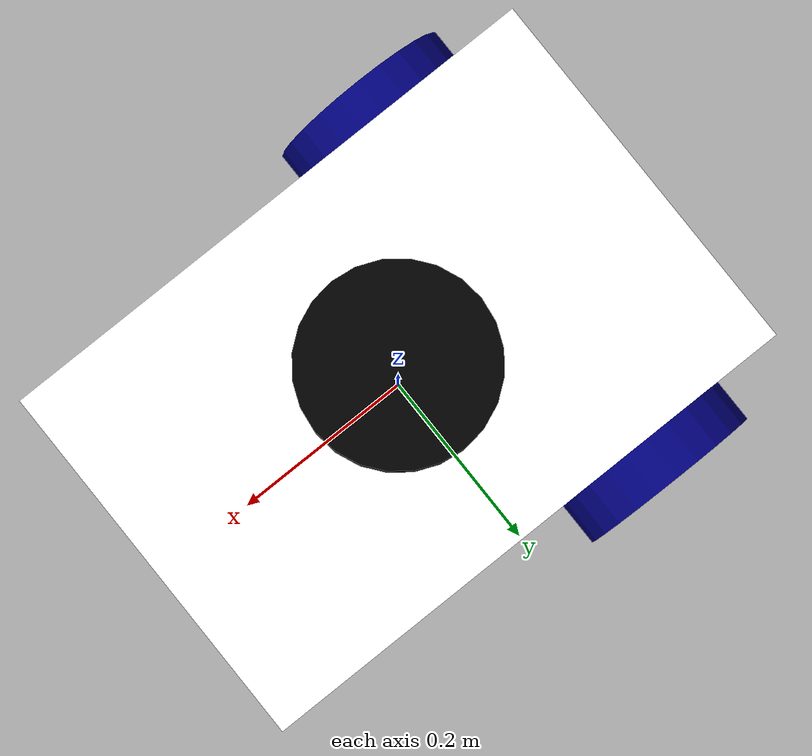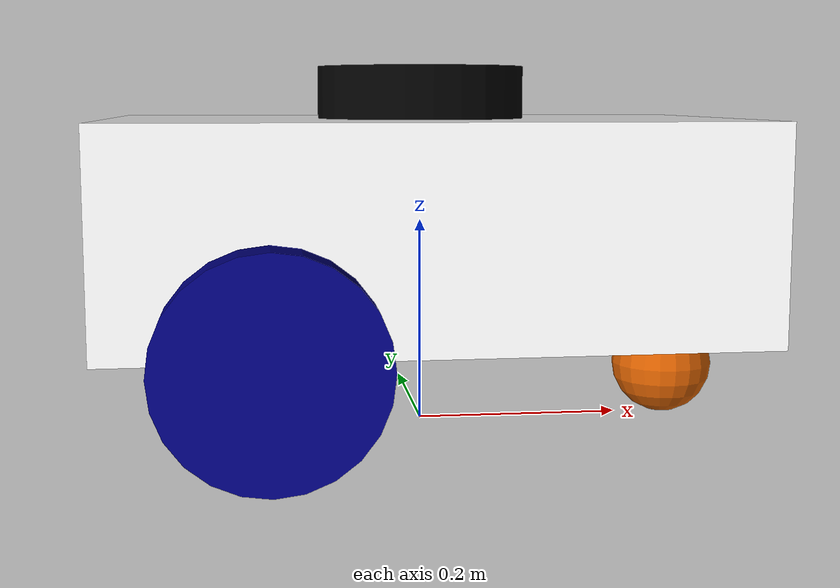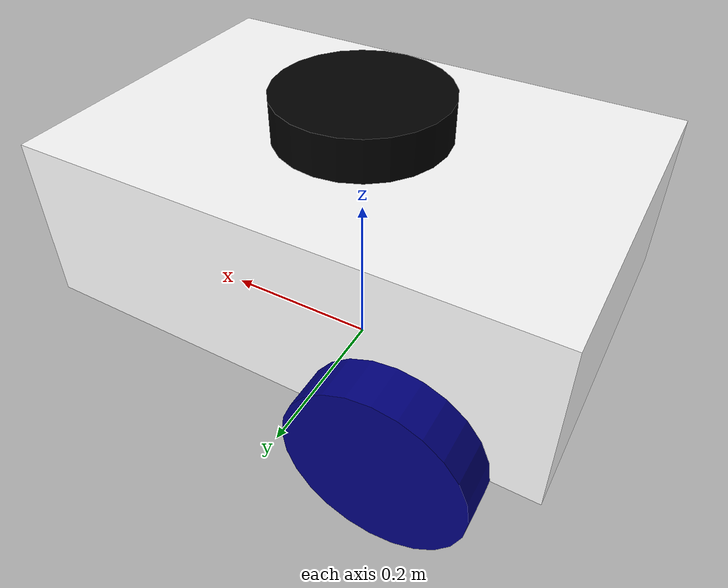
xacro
<?xml version="1.0"?>
<robot xmlns:xacro="http://www.ros.org/wiki/xacro">
    xacro:<xacro:include filename="inertial_macros.xacro" />
  <!-- Define material only once -->
    <material name="white">
        <color rgba="1 1 1 1"/>
    </material>
    <material name="black">
        <color rgba="0 0 0 1"/>
    </material>
    <material name="blue">
        <color rgba="0 0 0.5 1" />
    </material>
    <!--start link llllllllllllllllllllllllllllllllllllllllllllllllllll -->
    <link name="base_footprint" />
    <link name="base_link">
        <visual>
            <geometry>
                <box size="0.6 0.4 0.2"/>
            </geometry>
            <origin xyz="0 0 0.1" rpy="0 0 0"/>
            <!-- Apply material -->
            <material name="white"/>
        </visual>
        <collision>
            <geometry>
                <box size="0.6 0.4 0.2"/>
            </geometry>
            <origin xyz="0 0 0.1" rpy="0 0 0"/>
            <!-- Apply material -->
            <material name="white"/>
        </collision>
    </link>
    <link name="lidar">
        <visual>
            <geometry>
                <cylinder radius="0.1" length="0.05"/>
            </geometry>
            <origin xyz="0 0 0" rpy="0 0 0" />
            <material name="black"/>
        </visual>
        <collision>
            <geometry>
                <cylinder radius="0.1" length="0.05"/>
            </geometry>
            <origin xyz="0 0 0" rpy="0 0 0" />
            <material name="black"/>
        </collision>
    </link>
    <link name="whil_wright">
        <visual>
            <geometry>
                <cylinder radius="0.1" length="0.05"/>
            </geometry>
            <origin xyz="0 0 0" rpy="1.57 0 0 "/>
            <material name="blue"/>
        </visual>
        <collision>
            <geometry>
                <cylinder radius="0.1" length="0.05"/>
            </geometry>
            <origin xyz="0 0 0" rpy="1.57 0 0 "/>
            <material name="blue"/>
        </collision>
    </link>
    <link name="whil_left">
        <visual>
            <geometry>
                <cylinder radius="0.1" length="0.05"/>
            </geometry>
            <origin xyz="0 0 0" rpy="1.57 0 0 "/>
            <material name="blue"/>
        </visual>
        <collision>
            <geometry>
                <cylinder radius="0.1" length="0.05"/>
            </geometry>
            <origin xyz="0 0 0" rpy="1.57 0 0 "/>
            <material name="blue"/>
        </collision>
    </link>

    <link name="first_while">
        <visual>
            <geometry>
                    <sphere radius="0.05"/>
            </geometry>
            <origin xyz="0 0 0"/>
        </visual>
        <collision>
            <geometry>
                    <sphere radius="0.05"/>
            </geometry>
            <origin xyz="0 0 0"/>
        </collision>
    </link>
<!--lllllllllllllllllllllllllllllllllllllllllllllllllllllllllllllllllllllllink eded lllllllllllllllllllllllllllllllllll-->
    <joint name="base_lidar_joint" type="fixed">
        <parent link="base_link"/>
        <child link="lidar"/>
        <origin xyz="0 0 0.225" rpy="0 0 0"/>
    </joint>
    <joint name="base_whil_wright_joint" type="continuous">
        <parent link="base_link"/>
        <child link="whil_wright"/>
        <origin xyz="-0.15 -0.225 0 " rpy="0 0 0"/>
        <axis xyz="0 1 0"/>
    </joint>
    <joint name="base_whil_left_joint" type="continuous">
        <parent link="base_link"/>
        <child link="whil_left"/>
        <origin xyz="-0.15 0.225 0 " rpy="0 0 0"/>
        <axis xyz="0 1 0"/>
    </joint>
    <joint name="base_first_while_joint" type="fixed">
        <parent link="base_link"/>
        <child link="first_while"/>
        <origin xyz="0.25 0 -0.05"/>
    </joint>
    <joint name="base_joint" type="fixed">
        <parent link="base_footprint"/>
        <child link="base_link" />
        <origin xyz="0 0 0.1"/>
    </joint>

</robot>
